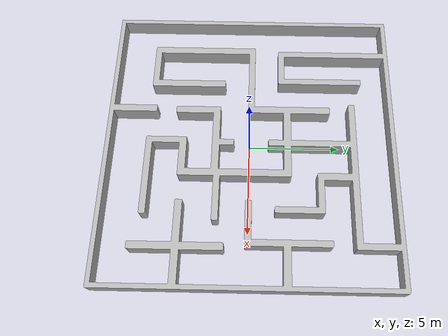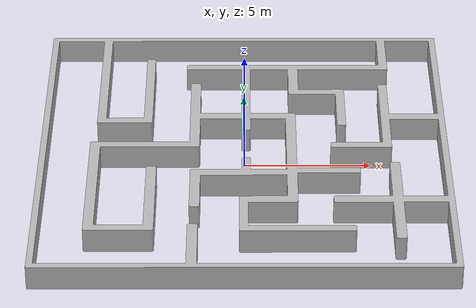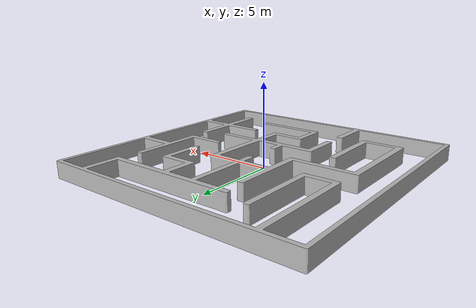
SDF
<?xml version="1.0" ?>
<sdf version="1.4">
  <model name="maze4">
    <link name="link">
      <inertial>
        <mass>1</mass>
        <inertia>
          <ixx>0.0</ixx>
          <ixy>0.0</ixy>
          <ixz>0.0</ixz>
          <iyy>0.0</iyy>
          <iyz>0.0</iyz>
          <izz>0.0</izz>
        </inertia>
      </inertial>
      <collision name="collision">
        <pose>-8 8 0 0 0 0</pose>
        <geometry>
          <mesh>
            <uri>model://maze4/map.stl</uri>
          </mesh>
        </geometry>
      </collision>
      <visual name="visual">
        <pose>-8 8 0 0 0 0</pose>
        <geometry>
          <mesh>
            <uri>model://maze4/map.stl</uri>
          </mesh>
        </geometry>
      </visual>
    </link>
    <static>1</static>
  </model>
</sdf>
